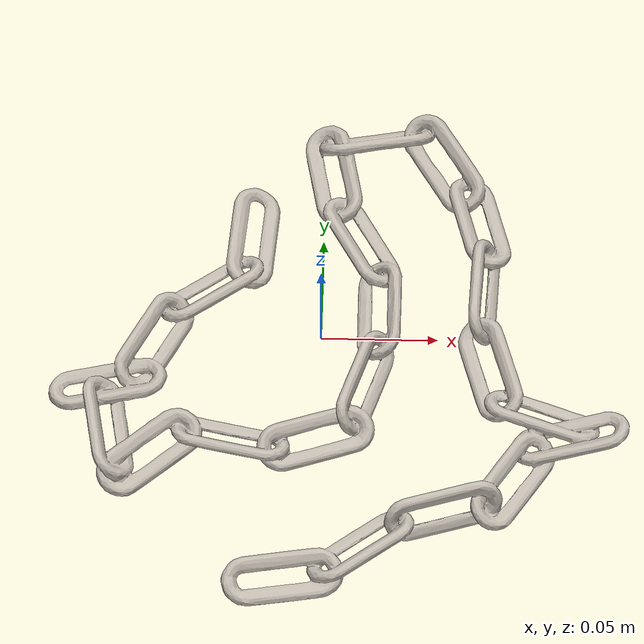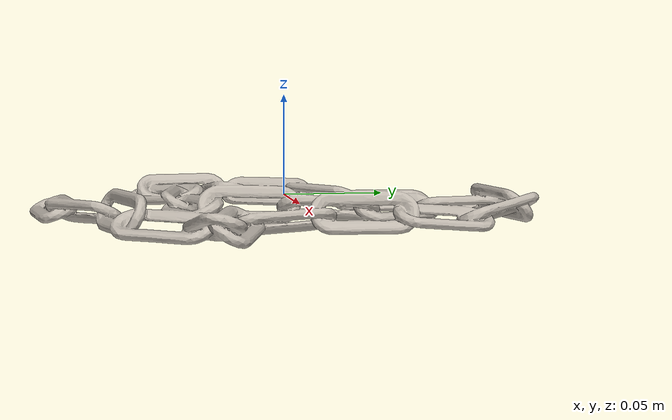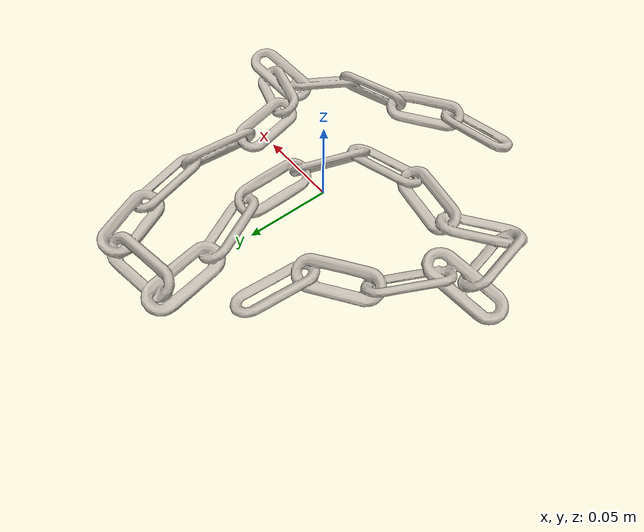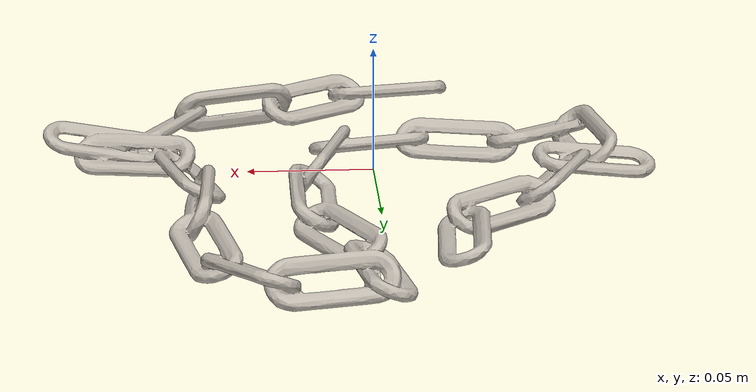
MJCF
<mujoco model="bread">
  <asset>
    <mesh file="nontextured.stl" name="obj_mesh" scale="0.8 0.8 0.8"/>
    <texture file="../../../../../textures/bread.png" type="2d" name="tex-bread" />
    <material name="bread" reflectance="0.7" texrepeat="15 15" texture="tex-bread" texuniform="true"/>
  </asset>
  <worldbody>
    <body>
      <body name="collision">
        <geom pos="0.0379525 -0.021621500000000002 -0.012237999999999999" mesh="obj_mesh" type="mesh" solimp="0.998 0.998 0.001" solref="0.001 1" density="50" friction="0.95 0.3 0.1"  material="bread" group="1" condim="4"/>
      </body>
      <body name="visual">
        <geom pos="0.0379525 -0.021621500000000002 -0.012237999999999999" mesh="obj_mesh" type="mesh" material="bread"  conaffinity="0" contype="0"  group="0" mass="0.0001"/>
        <geom pos="0.0379525 -0.021621500000000002 -0.012237999999999999" mesh="obj_mesh" type="mesh" material="bread"  conaffinity="0" contype="0"  group="1" mass="0.0001"/>
      </body>
      <site rgba="0 0 0 0" size="0.005" pos="0 0 -0.012378" name="bottom_site"/>
      <site rgba="0 0 0 0" size="0.005" pos="0 0 0.012378" name="top_site"/>
      <site rgba="0 0 0 0" size="0.005" pos="0.1551555 0.15359250000000002 0.012378" name="horizontal_radius_site"/>
    </body>
  </worldbody>
</mujoco>
